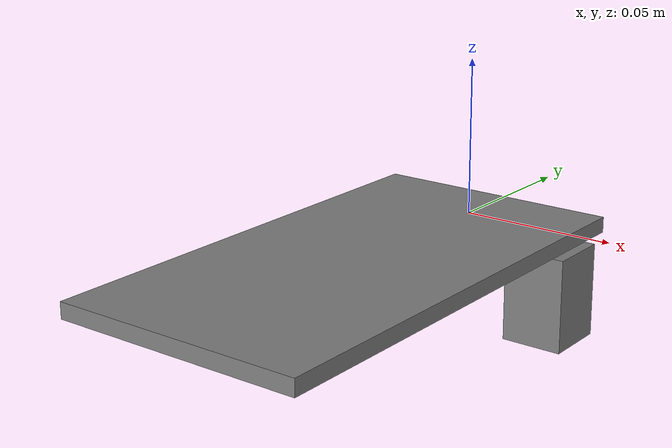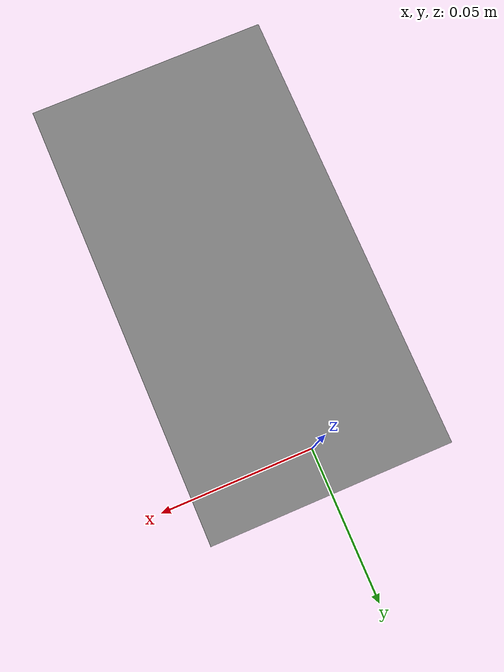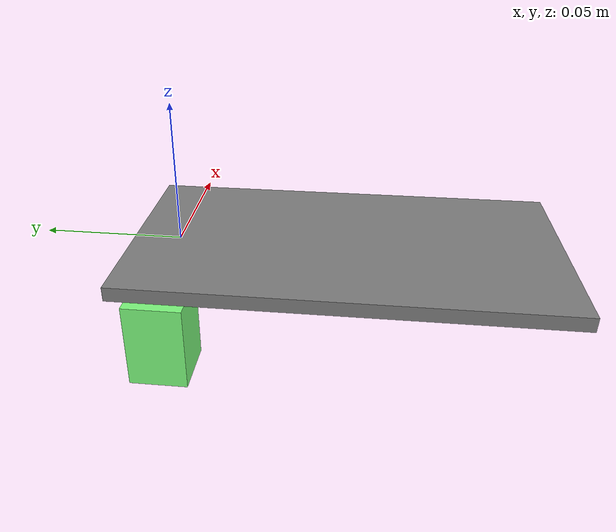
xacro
<?xml version="1.0"?>

<!-- Coordinates are: x forward, y left, z up; rotation is: roll right, pitch forward, yaw left -->
<!-- See http://www.ros.org/reps/rep-0103.html for details -->

<robot name="stereo_test_rig" xmlns:xacro="http://ros.org/wiki/xacro">

  <!-- General constants -->
  <xacro:property name="PI" value="3.1415926535897931"/>

  <!-- Materials -->
  <material name="gray"><color rgba="0.5 0.5 0.5 1.0"/></material>
  <material name="green"><color rgba="0.5 1.0 0.5 1.0"/></material>

  <!-- Base link -->
  <link name="base_link">
    <visual>
      <origin xyz="0 -0.06 0"/>
      <geometry><box size="0.08 0.15 0.005"/></geometry>
      <material name="gray"/> <!-- board -->
    </visual>
    <visual>
      <origin xyz="-0.03 0 -0.02"/>
      <geometry><box size="0.02 0.02 0.03"/></geometry>
      <material name="green"/> <!-- left camera -->
    </visual>
    <visual>
      <origin xyz="0.03 0 -0.02"/>
      <geometry><box size="0.02 0.02 0.03"/></geometry>
      <material name="gray"/> <!-- right camera -->
    </visual>
  </link>

  <!-- Left camera frame -->
  <link name="left_camera_frame" />
  <joint name="base_to_left_camera" type="fixed">
    <origin xyz="-0.03 0 0" rpy="${PI} 0 0"/>
    <parent link="base_link"/>
    <child link="left_camera_frame"/>
  </joint>

  <!-- Right camera frame -->
  <link name="right_camera_frame" />
  <joint name="base_to_right_camera" type="fixed">
    <origin xyz="0.03 0 0" rpy="${PI} 0 0"/>
    <parent link="base_link"/>
    <child link="right_camera_frame"/>
  </joint>

</robot>
